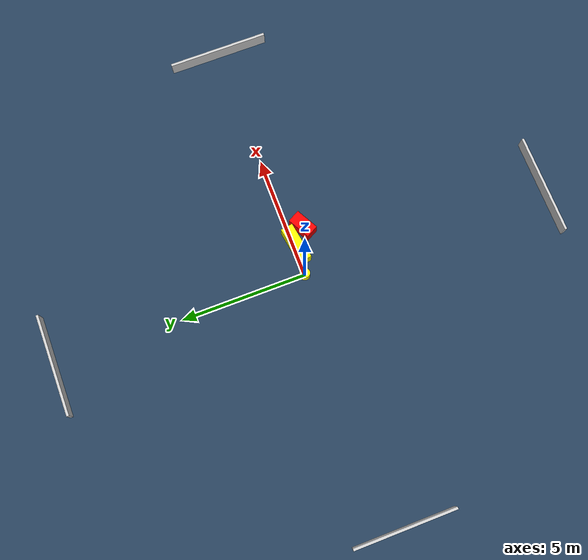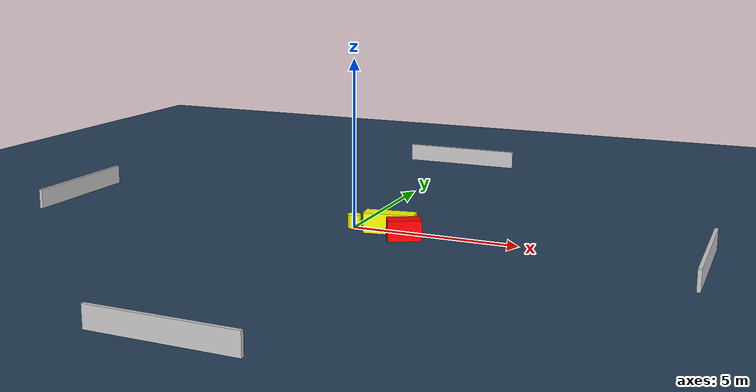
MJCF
<?xml version="1.0" ?>
<mujoco model="generated_environment">
  <option timestep="0.01" integrator="RK4" cone="elliptic"/>
  <default>
    <geom density="1"/>
  </default>
  <asset>
    <texture builtin="gradient" height="3072" name="skybox" rgb1="0.3 0.5 0.7" rgb2="0 0 0" type="skybox" width="512"/>
    <texture builtin="checker" height="300" name="groundplane" rgb1="0.2 0.3 0.4" rgb2="0.1 0.2 0.3" type="2d" width="300"/>
    <material name="groundplane" reflectance="0.2" texrepeat="5 5" texture="groundplane"/>
  </asset>
  <worldbody>
    <light dir="0 0 -1" directional="true" pos="0 0 1.5"/>
    <geom condim="3" friction="0.5 0.005 0.001" material="groundplane" name="floor" pos="0 0 0" size="0 0 0.05" type="plane"/>
    <body name="walls">
      <geom name="wall_1" condim="4" pos="-10.0 0.0 0.3" rgba="0.800000011920929 0.800000011920929 0.800000011920929 1.0" size="0.05 2.0 0.3" type="box"/>
      <geom name="wall_2" condim="4" pos="10.0 0.0 0.3" rgba="0.800000011920929 0.800000011920929 0.800000011920929 1.0" size="0.05 2.0 0.3" type="box"/>
      <geom name="wall_3" condim="4" pos="0.0 -10.0 0.3" rgba="0.800000011920929 0.800000011920929 0.800000011920929 1.0" size="2.0 0.05 0.3" type="box"/>
      <geom name="wall_4" condim="4" pos="0.0 10.0 0.3" rgba="0.800000011920929 0.800000011920929 0.800000011920929 1.0" size="2.0 0.05 0.3" type="box"/>
    </body>
    <body name="robot">
      <joint name="joint_x" type="slide" pos="0 0 0" axis="1 0 0"/>
      <joint name="joint_y" type="slide" pos="0 0 0" axis="0 1 0"/>
      <geom name="robot" type="cylinder" pos="0.0 0.0 0.2" size="0.2 0.2 0.0" mass="5.0" friction="1.0 0.005 0.0001" condim="4" rgba="1.0 1.0 0.0 1.0"/>
    </body>
    <body name="obstacle_1_movable">
      <geom name="obstacle_1_movable" condim="4" pos="1.1813621462129977 -0.08531771323480916 0.3" euler="0 0 98.99227100375592" friction="0.0 0.005 0.001" rgba="1.0 1.0 0.0 1.0" size="0.24810407194577136 0.7450853027121087 0.3" type="box" mass="0.1"/>
      <joint type="free"/>
    </body>
    <body name="obstacle_2_static">
      <geom name="obstacle_2_static" condim="4" pos="1.8122313670748986 -0.600853397822372 0.3" euler="0 0 28.183477859081766" friction="0.0 0.005 0.001" rgba="1.0 0.0 0.0 1.0" size="0.4840413174884665 0.26264838000884083 0.3" type="box"/>
    </body>
  </worldbody>
  <actuator>
    <motor name="actuator_x" joint="joint_x" gear="1" ctrlrange="-1 1"/>
    <motor name="actuator_y" joint="joint_y" gear="1" ctrlrange="-1 1"/>
  </actuator>
</mujoco>
